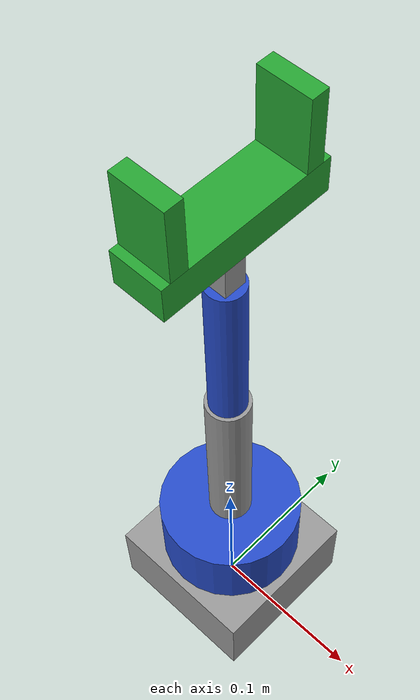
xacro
<?xml version="1.0"?>
<robot name="my_robot" xmlns:xacro="http://www.ros.org/wiki/xacro">

    <xacro:include filename="common_properties.xacro" />
    <xacro:include filename="arm.xacro" />
    <xacro:include filename="gripper.xacro" />

    <joint name="gripper_base_joint" type="fixed">
        <parent link="tool_link" />
        <child link="gripper_base_link" />
        <origin xyz="0 0 0" rpy="0 0 0" />
    </joint>

</robot>

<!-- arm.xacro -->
<robot xmlns:xacro="http://www.ros.org/wiki/xacro">

    <link name="base_link">
        <visual>
            <geometry>
                <box size="0.098 0.098 0.05087" />
            </geometry>
            <origin xyz="0 0 0.025435" rpy="0 0 0" />
            <material name="grey" />
        </visual>
        <collision>
            <geometry>
                <box size="0.098 0.098 0.05087" />
            </geometry>
            <origin xyz="0 0 0.025435" rpy="0 0 0" />
        </collision>
    </link>

    <link name="shoulder_link">
        <visual>
            <geometry>
                <cylinder length="0.04601" radius="0.044" />
            </geometry>
            <origin xyz="0 0 0.023005" rpy="0 0 0" />
            <material name="blue" />
        </visual>
        <collision>
            <geometry>
                <cylinder length="0.04601" radius="0.044" />
            </geometry>
            <origin xyz="0 0 0.023005" rpy="0 0 0" />
        </collision>
    </link>

    <link name="arm_link">
        <visual>
            <geometry>
                <cylinder length="0.11312" radius="0.013" />
            </geometry>
            <origin xyz="0 0 0.05656" rpy="0 0 0" />
            <material name="grey" />
        </visual>
        <collision>
            <geometry>
                <box size="0.026 0.026 0.11312" />
            </geometry>
            <origin xyz="0 0 0.05656" rpy="0 0 0" />
        </collision>
    </link>

    <link name="elbow_link">
        <visual>
            <geometry>
                <cylinder length="0.09795" radius="0.010885" />
            </geometry>
            <origin xyz="0 0 0.048975" rpy="0 0 0" />
            <material name="blue" />
        </visual>
        <collision>
            <geometry>
                <box size="0.02177 0.02177 0.09795" />
            </geometry>
            <origin xyz="0 0 0.048975" rpy="0 0 0" />
        </collision>
    </link>

    <link name="forearm_link">
        <visual>
            <geometry>
                <box size="0.013 0.013 0.02908" />
            </geometry>
            <origin xyz="0 0 0.01454" rpy="0 0 0" />
            <material name="grey" />
        </visual>
        <collision>
            <geometry>
                <box size="0.013 0.013 0.02908" />
            </geometry>
            <origin xyz="0 0 0.01454" rpy="0 0 0" />
        </collision>
    </link>

    <link name="wrist_link">
        <visual>
            <geometry>
                <box size="0.02177 0.02177 0.00299" />
            </geometry>
            <origin xyz="0 0 0.001495" rpy="0 0 0" />
            <material name="blue" />
        </visual>
        <collision>
            <geometry>
                <box size="0.02177 0.02177 0.00299" />
            </geometry>
            <origin xyz="0 0 0.001495" rpy="0 0 0" />
        </collision>
    </link>

    <link name="tool_link" />

    <joint name="joint1" type="revolute">
        <parent link="base_link" />
        <child link="shoulder_link" />
        <origin xyz="0 0 0.05087" rpy="0 0 0" />
        <axis xyz="0 0 1" />
        <limit effort="1000.0" velocity="1.0" lower="-1.57" upper="1.57" />
    </joint>

    <joint name="joint2" type="revolute">
        <parent link="shoulder_link" />
        <child link="arm_link" />
        <origin xyz="0 0 0.04601" rpy="0 0 0" />
        <axis xyz="0 1 0" />
        <limit effort="1000.0" velocity="1.0" lower="-1.57" upper="1.57" />
    </joint>

    <joint name="joint3" type="revolute">
        <parent link="arm_link" />
        <child link="elbow_link" />
        <origin xyz="0 0 0.11312" rpy="0 0 0" />
        <axis xyz="0 1 0" />
        <limit effort="1000.0" velocity="1.0" lower="-1.57" upper="1.57" />
    </joint>

    <joint name="joint4" type="revolute">
        <parent link="elbow_link" />
        <child link="forearm_link" />
        <origin xyz="0 0 0.09795" rpy="0 0 0" />
        <axis xyz="0 0 1" />
        <limit effort="1000.0" velocity="1.0" lower="-1.57" upper="1.57" />
    </joint>

    <joint name="joint5" type="revolute">
        <parent link="forearm_link" />
        <child link="wrist_link" />
        <origin xyz="0 0 0.02908" rpy="0 0 0" />
        <axis xyz="0 1 0" />
        <limit effort="1000.0" velocity="1.0" lower="-1.57" upper="1.57" />
    </joint>

    <joint name="hand_tool_joint" type="fixed">
        <parent link="wrist_link" />
        <child link="tool_link" />
        <origin xyz="0 0 0.00299" rpy="0 0 0" />
    </joint>

</robot>

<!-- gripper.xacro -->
<robot xmlns:xacro="http://www.ros.org/wiki/xacro">

    <link name="gripper_base_link">
        <visual>
            <geometry>
                <box size="0.1 0.03 0.02" />
            </geometry>
            <origin xyz="0 0 0.01" rpy="0 0 1.57" />
            <material name="dark_green" />
        </visual>
        <collision>
            <geometry>
                <box size="0.1 0.03 0.02" />
            </geometry>
            <origin xyz="0 0 0.01" rpy="0 0 1.57" />
        </collision>
    </link>

    <link name="gripper_left_finger_link">
        <visual>
            <geometry>
                <box size="0.01 0.03 0.04" />
            </geometry>
            <origin xyz="0 0 0.02" rpy="0 0 1.57" />
            <material name="light_green" />
        </visual>
        <collision>
            <geometry>
                <box size="0.01 0.03 0.04" />
            </geometry>
            <origin xyz="0 0 0.02" rpy="0 0 1.57" />
        </collision>
    </link>

    <link name="gripper_right_finger_link">
        <visual>
            <geometry>
                <box size="0.01 0.03 0.04" />
            </geometry>
            <origin xyz="0 0 0.02" rpy="0 0 1.57" />
            <material name="light_green" />
        </visual>
        <collision>
            <geometry>
                <box size="0.01 0.03 0.04" />
            </geometry>
            <origin xyz="0 0 0.02" rpy="0 0 1.57" />
        </collision>
    </link>

    <joint name="gripper_left_finger_joint" type="prismatic">
        <parent link="gripper_base_link" />
        <child link="gripper_left_finger_link" />
        <origin xyz="0 -0.04 0.02" rpy="0 0 0" />
        <axis xyz="0 1 0" />
        <limit effort="1000.0" velocity="1.0" lower="0.0" upper="0.035" />
    </joint>

    <joint name="gripper_right_finger_joint" type="prismatic">
        <parent link="gripper_base_link" />
        <child link="gripper_right_finger_link" />
        <origin xyz="0 0.04 0.02" rpy="0 0 0" />
        <axis xyz="0 1 0" />
        <mimic joint="gripper_left_finger_joint" multiplier="-1.0" />
        <limit effort="1000.0" velocity="1.0" lower="-0.035" upper="0.0" />
    </joint>

</robot>
